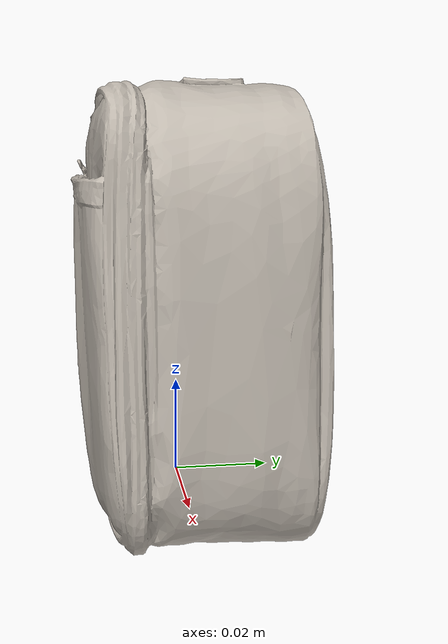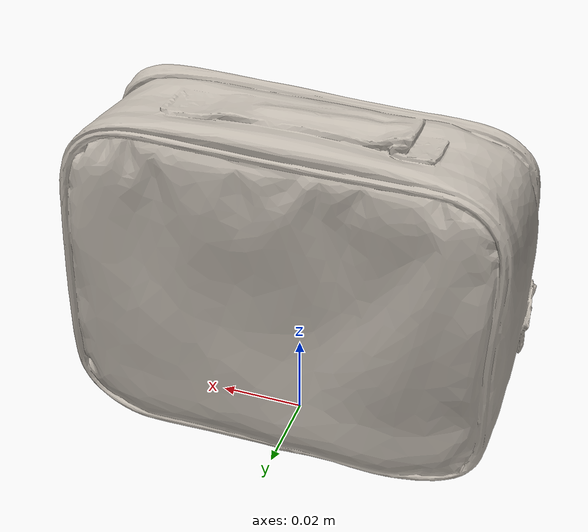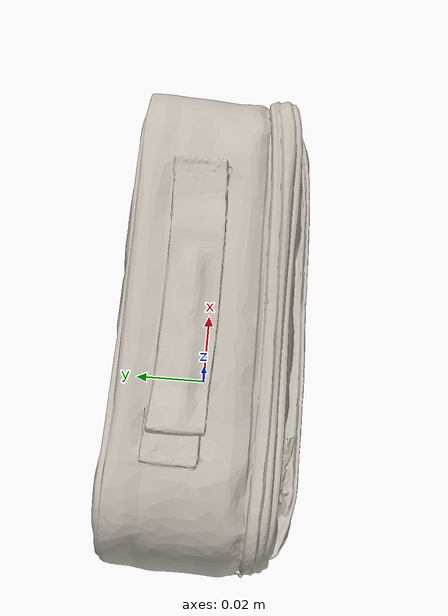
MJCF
<mujoco model="lunch box">
  <asset>
    <texture type="2d" name="texture" file="texture.png" />
    <material name="material_0" texture="texture" specular="0.5" shininess="0.5" />
    <mesh name="model" file="model.obj" scale="0.4 0.4 0.4" />
    <mesh name="model_collision_0" file="model_collision_0.obj" scale="0.4 0.4 0.4" />
    <mesh name="model_collision_1" file="model_collision_1.obj" scale="0.4 0.4 0.4" />
    <mesh name="model_collision_2" file="model_collision_2.obj" scale="0.4 0.4 0.4" />
    <mesh name="model_collision_3" file="model_collision_3.obj" scale="0.4 0.4 0.4" />
    <mesh name="model_collision_4" file="model_collision_4.obj" scale="0.4 0.4 0.4" />
    <mesh name="model_collision_5" file="model_collision_5.obj" scale="0.4 0.4 0.4" />
    <mesh name="model_collision_6" file="model_collision_6.obj" scale="0.4 0.4 0.4" />
    <mesh name="model_collision_7" file="model_collision_7.obj" scale="0.4 0.4 0.4" />
    <mesh name="model_collision_8" file="model_collision_8.obj" scale="0.4 0.4 0.4" />
    <mesh name="model_collision_9" file="model_collision_9.obj" scale="0.4 0.4 0.4" />
    <mesh name="model_collision_10" file="model_collision_10.obj" scale="0.4 0.4 0.4" />
    <mesh name="model_collision_11" file="model_collision_11.obj" scale="0.4 0.4 0.4" />
    <mesh name="model_collision_12" file="model_collision_12.obj" scale="0.4 0.4 0.4" />
    <mesh name="model_collision_13" file="model_collision_13.obj" scale="0.4 0.4 0.4" />
    <mesh name="model_collision_14" file="model_collision_14.obj" scale="0.4 0.4 0.4" />
    <mesh name="model_collision_15" file="model_collision_15.obj" scale="0.4 0.4 0.4" />
    <mesh name="model_collision_16" file="model_collision_16.obj" scale="0.4 0.4 0.4" />
    <mesh name="model_collision_17" file="model_collision_17.obj" scale="0.4 0.4 0.4" />
    <mesh name="model_collision_18" file="model_collision_18.obj" scale="0.4 0.4 0.4" />
    <mesh name="model_collision_19" file="model_collision_19.obj" scale="0.4 0.4 0.4" />
    <mesh name="model_collision_20" file="model_collision_20.obj" scale="0.4 0.4 0.4" />
    <mesh name="model_collision_21" file="model_collision_21.obj" scale="0.4 0.4 0.4" />
    <mesh name="model_collision_22" file="model_collision_22.obj" scale="0.4 0.4 0.4" />
    <mesh name="model_collision_23" file="model_collision_23.obj" scale="0.4 0.4 0.4" />
    <mesh name="model_collision_24" file="model_collision_24.obj" scale="0.4 0.4 0.4" />
    <mesh name="model_collision_25" file="model_collision_25.obj" scale="0.4 0.4 0.4" />
    <mesh name="model_collision_26" file="model_collision_26.obj" scale="0.4 0.4 0.4" />
    <mesh name="model_collision_27" file="model_collision_27.obj" scale="0.4 0.4 0.4" />
    <mesh name="model_collision_28" file="model_collision_28.obj" scale="0.4 0.4 0.4" />
    <mesh name="model_collision_29" file="model_collision_29.obj" scale="0.4 0.4 0.4" />
    <mesh name="model_collision_30" file="model_collision_30.obj" scale="0.4 0.4 0.4" />
    <mesh name="model_collision_31" file="model_collision_31.obj" scale="0.4 0.4 0.4" />
  </asset>
  <worldbody>
    <body name="lunch box">
      <geom material="material_0" mesh="model" type="mesh" contype="0" conaffinity="0" group="2" />
      <geom size="0.05 0.01 0.04" pos="0 0.0 0.04" group="3" type="box" />
    </body>
  </worldbody>
</mujoco>
